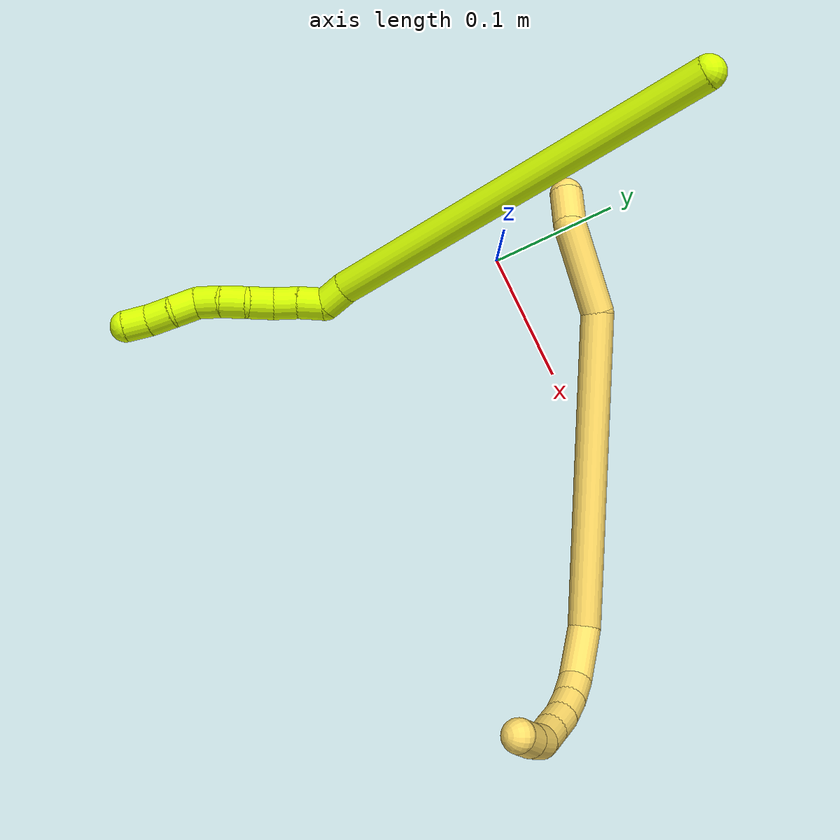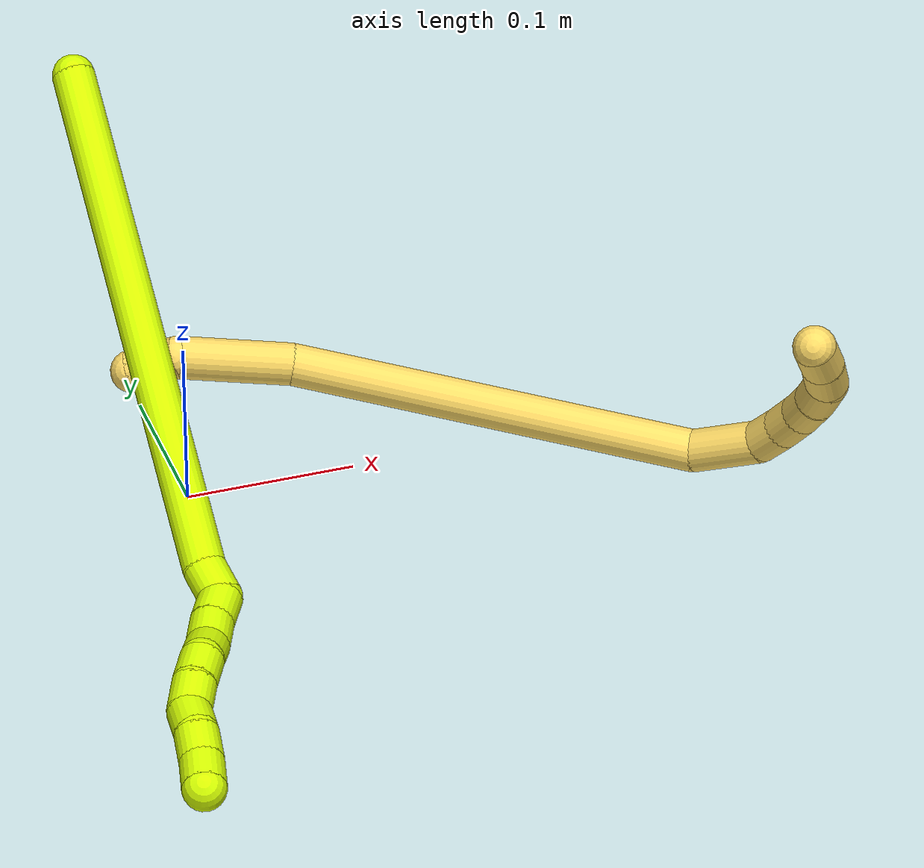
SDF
<sdf version="1.7">
 <world name="default">
  <model name="photoneo_s_sensor">
   <static>1</static>
   <pose>0 0 2 1.57079 1.57079 3.14159</pose>
   <link name="link">
    <inertial><mass>0.1</mass></inertial>
    <sensor name="sensor" type="depth">
     <update_rate>30</update_rate>
     <camera>
      <horizontal_fov>1.22</horizontal_fov>
      <image><width>1920</width><height>1200</height><format>B8G8R8</format></image>
      <clip><near>0.1</near><far>4</far></clip>
      <depth_camera><output>points</output></depth_camera>
     </camera>
     <plugin name="camera_plugin" filename="libgazebo_ros_depth_camera.so">
      <baseline>0.2</baseline>
      <alwaysOn>1</alwaysOn>
      <updateRate>0.0</updateRate>
      <cameraName>camera_ir</cameraName>
      <imageTopicName>/camera/color/image_raw</imageTopicName>
      <cameraInfoTopicName>/camera/color/camera_info</cameraInfoTopicName>
      <depthImageTopicName>/camera/depth/image_raw</depthImageTopicName>
      <depthImageCameraInfoTopicName>/camera/depth/camera_info</depthImageCameraInfoTopicName>
      <pointCloudTopicName>/camera/depth/points</pointCloudTopicName>
      <frameName>fr_optical</frameName>
      <pointCloudCutoff>0.1</pointCloudCutoff>
      <pointCloudCutoffMax>2.0</pointCloudCutoffMax>
      <distortionK1>0</distortionK1>
      <distortionK2>0</distortionK2>
      <distortionK3>0</distortionK3>
      <distortionT1>0</distortionT1>
      <distortionT2>0</distortionT2>
      <CxPrime>0</CxPrime>
      <Cx>0</Cx>
      <Cy>0</Cy>
      <focalLength>0</focalLength>
      <hackBaseline>0</hackBaseline>
     </plugin>
    </sensor>
   </link>
  </model>
  <model name="bin">
   <static>1</static>
   <link name="bottom">
    <collision name="collision-bottom">
     <pose>0 0 -0.01 0 -0 0</pose>
     <geometry><box><size>0.8 0.6 0.02</size></box></geometry>
     <surface>
      <friction><ode><mu>100</mu><mu2>100</mu2></ode></friction>
      <contact><collide_bitmask>65535</collide_bitmask></contact>
     </surface>
    </collision>
   </link>
   <link name="west_wall">
    <collision name="collision-west_wall">
     <pose>-0.41 0 0.1 0 -0 0</pose>
     <geometry><box><size>0.02 0.6 0.2</size></box></geometry>
     <surface>
      <friction><ode><mu>100</mu><mu2>100</mu2></ode></friction>
      <contact><collide_bitmask>65535</collide_bitmask></contact>
     </surface>
    </collision>
   </link>
   <link name="east_wall">
    <collision name="collision-east_wall">
     <pose>0.41 0 0.1 0 -0 0</pose>
     <geometry><box><size>0.02 0.6 0.2</size></box></geometry>
     <surface>
      <friction><ode><mu>100</mu><mu2>100</mu2></ode></friction>
      <contact><collide_bitmask>65535</collide_bitmask></contact>
     </surface>
    </collision>
   </link>
   <link name="south_wall">
    <collision name="collision-south_wall">
     <pose>0 -0.31 0.1 0 -0 0</pose>
     <geometry><box><size>0.8 0.02 0.2</size></box></geometry>
     <surface>
      <friction><ode><mu>100</mu><mu2>100</mu2></ode></friction>
      <contact><collide_bitmask>65535</collide_bitmask></contact>
     </surface>
    </collision>
   </link>
   <link name="north_wall">
    <collision name="collision-north_wall">
     <pose>0 0.31 0.1 0 -0 0</pose>
     <geometry><box><size>0.8 0.02 0.2</size></box></geometry>
     <surface>
      <friction><ode><mu>100</mu><mu2>100</mu2></ode></friction>
      <contact><collide_bitmask>65535</collide_bitmask></contact>
     </surface>
    </collision>
   </link>
  </model>
  <model name="5">
   <static>0</static>
   <link name="5">
    <collision name="collision-cylinder-e_1_1_4">
     <pose>0.013424 -0.005041 -0.002158 1.97528 1.18303 1.58891</pose>
     <geometry><cylinder><radius>0.0125</radius><length>0.029002</length></cylinder></geometry>
     <surface>
      <friction><ode><mu>1.16</mu><mu2>1.16</mu2><slip1>0</slip1><slip2>0</slip2></ode></friction>
      <contact><ode><kp>1e+06</kp><kd>1</kd><max_vel>0</max_vel><min_depth>0.001</min_depth></ode></contact>
     </surface>
    </collision>
    <visual name="visual-cylinder-e_1_1_4">
     <pose>0.013424 -0.005041 -0.002158 1.97528 1.18303 1.58891</pose>
     <geometry><cylinder><radius>0.0125</radius><length>0.029002</length></cylinder></geometry>
     <material><ambient>1 0.858824 0.4 1</ambient></material>
    </visual>
    <collision name="collision-cylinder-e_2_4_5">
     <pose>0.058417 -0.011271 0.008975 0.089269 1.17088 0.059205</pose>
     <geometry><cylinder><radius>0.0125</radius><length>0.068546</length></cylinder></geometry>
     <surface>
      <friction><ode><mu>1.16</mu><mu2>1.16</mu2><slip1>0</slip1><slip2>0</slip2></ode></friction>
      <contact><ode><kp>1e+06</kp><kd>1</kd><max_vel>0</max_vel><min_depth>0.001</min_depth></ode></contact>
     </surface>
    </collision>
    <visual name="visual-cylinder-e_2_4_5">
     <pose>0.058417 -0.011271 0.008975 0.089269 1.17088 0.059205</pose>
     <geometry><cylinder><radius>0.0125</radius><length>0.068546</length></cylinder></geometry>
     <material><ambient>1 0.858824 0.4 1</ambient></material>
    </visual>
    <collision name="collision-cylinder-e_3_5_6">
     <pose>0.207878 0.002488 0.031829 -1.00166 1.42139 -0.880612</pose>
     <geometry><cylinder><radius>0.0125</radius><length>0.238441</length></cylinder></geometry>
     <surface>
      <friction><ode><mu>1.16</mu><mu2>1.16</mu2><slip1>0</slip1><slip2>0</slip2></ode></friction>
      <contact><ode><kp>1e+06</kp><kd>1</kd><max_vel>0</max_vel><min_depth>0.001</min_depth></ode></contact>
     </surface>
    </collision>
    <visual name="visual-cylinder-e_3_5_6">
     <pose>0.207878 0.002488 0.031829 -1.00166 1.42139 -0.880612</pose>
     <geometry><cylinder><radius>0.0125</radius><length>0.238441</length></cylinder></geometry>
     <material><ambient>1 0.858824 0.4 1</ambient></material>
    </visual>
    <collision name="collision-cylinder-e_4_6_7">
     <pose>0.345221 0.013369 0.033699 2.65526 1.15013 2.4105</pose>
     <geometry><cylinder><radius>0.0125</radius><length>0.042617</length></cylinder></geometry>
     <surface>
      <friction><ode><mu>1.16</mu><mu2>1.16</mu2><slip1>0</slip1><slip2>0</slip2></ode></friction>
      <contact><ode><kp>1e+06</kp><kd>1</kd><max_vel>0</max_vel><min_depth>0.001</min_depth></ode></contact>
     </surface>
    </collision>
    <visual name="visual-cylinder-e_4_6_7">
     <pose>0.345221 0.013369 0.033699 2.65526 1.15013 2.4105</pose>
     <geometry><cylinder><radius>0.0125</radius><length>0.042617</length></cylinder></geometry>
     <material><ambient>1 0.858824 0.4 1</ambient></material>
    </visual>
    <collision name="collision-cylinder-e_5_7_8">
     <pose>0.371313 0.004878 0.019399 2.5515 0.695769 1.74652</pose>
     <geometry><cylinder><radius>0.0125</radius><length>0.02072</length></cylinder></geometry>
     <surface>
      <friction><ode><mu>1.16</mu><mu2>1.16</mu2><slip1>0</slip1><slip2>0</slip2></ode></friction>
      <contact><ode><kp>1e+06</kp><kd>1</kd><max_vel>0</max_vel><min_depth>0.001</min_depth></ode></contact>
     </surface>
    </collision>
    <visual name="visual-cylinder-e_5_7_8">
     <pose>0.371313 0.004878 0.019399 2.5515 0.695769 1.74652</pose>
     <geometry><cylinder><radius>0.0125</radius><length>0.02072</length></cylinder></geometry>
     <material><ambient>1 0.858824 0.4 1</ambient></material>
    </visual>
    <collision name="collision-cylinder-e_6_8_9">
     <pose>0.383492 -0.003782 0.00546 2.61783 0.579314 1.67669</pose>
     <geometry><cylinder><radius>0.0125</radius><length>0.020237</length></cylinder></geometry>
     <surface>
      <friction><ode><mu>1.16</mu><mu2>1.16</mu2><slip1>0</slip1><slip2>0</slip2></ode></friction>
      <contact><ode><kp>1e+06</kp><kd>1</kd><max_vel>0</max_vel><min_depth>0.001</min_depth></ode></contact>
     </surface>
    </collision>
    <visual name="visual-cylinder-e_6_8_9">
     <pose>0.383492 -0.003782 0.00546 2.61783 0.579314 1.67669</pose>
     <geometry><cylinder><radius>0.0125</radius><length>0.020237</length></cylinder></geometry>
     <material><ambient>1 0.858824 0.4 1</ambient></material>
    </visual>
    <collision name="collision-cylinder-e_7_9_10">
     <pose>0.393243 -0.011946 -0.010123 2.69718 0.431826 1.54112</pose>
     <geometry><cylinder><radius>0.0125</radius><length>0.020125</length></cylinder></geometry>
     <surface>
      <friction><ode><mu>1.16</mu><mu2>1.16</mu2><slip1>0</slip1><slip2>0</slip2></ode></friction>
      <contact><ode><kp>1e+06</kp><kd>1</kd><max_vel>0</max_vel><min_depth>0.001</min_depth></ode></contact>
     </surface>
    </collision>
    <visual name="visual-cylinder-e_7_9_10">
     <pose>0.393243 -0.011946 -0.010123 2.69718 0.431826 1.54112</pose>
     <geometry><cylinder><radius>0.0125</radius><length>0.020125</length></cylinder></geometry>
     <material><ambient>1 0.858824 0.4 1</ambient></material>
    </visual>
    <collision name="collision-cylinder-e_8_10_11">
     <pose>0.40086 -0.020702 -0.026608 2.61136 0.342697 1.13485</pose>
     <geometry><cylinder><radius>0.0125</radius><length>0.020266</length></cylinder></geometry>
     <surface>
      <friction><ode><mu>1.16</mu><mu2>1.16</mu2><slip1>0</slip1><slip2>0</slip2></ode></friction>
      <contact><ode><kp>1e+06</kp><kd>1</kd><max_vel>0</max_vel><min_depth>0.001</min_depth></ode></contact>
     </surface>
    </collision>
    <visual name="visual-cylinder-e_8_10_11">
     <pose>0.40086 -0.020702 -0.026608 2.61136 0.342697 1.13485</pose>
     <geometry><cylinder><radius>0.0125</radius><length>0.020266</length></cylinder></geometry>
     <material><ambient>1 0.858824 0.4 1</ambient></material>
    </visual>
    <collision name="collision-cylinder-e_9_11_12">
     <pose>0.403103 -0.030188 -0.043628 2.65402 -0.116294 -0.459797</pose>
     <geometry><cylinder><radius>0.0125</radius><length>0.020028</length></cylinder></geometry>
     <surface>
      <friction><ode><mu>1.16</mu><mu2>1.16</mu2><slip1>0</slip1><slip2>0</slip2></ode></friction>
      <contact><ode><kp>1e+06</kp><kd>1</kd><max_vel>0</max_vel><min_depth>0.001</min_depth></ode></contact>
     </surface>
    </collision>
    <visual name="visual-cylinder-e_9_11_12">
     <pose>0.403103 -0.030188 -0.043628 2.65402 -0.116294 -0.459797</pose>
     <geometry><cylinder><radius>0.0125</radius><length>0.020028</length></cylinder></geometry>
     <material><ambient>1 0.858824 0.4 1</ambient></material>
    </visual>
    <collision name="collision-cylinder-e_10_12_2">
     <pose>0.399789 -0.039339 -0.061098 2.66421 -0.216632 -0.840524</pose>
     <geometry><cylinder><radius>0.0125</radius><length>0.020019</length></cylinder></geometry>
     <surface>
      <friction><ode><mu>1.16</mu><mu2>1.16</mu2><slip1>0</slip1><slip2>0</slip2></ode></friction>
      <contact><ode><kp>1e+06</kp><kd>1</kd><max_vel>0</max_vel><min_depth>0.001</min_depth></ode></contact>
     </surface>
    </collision>
    <visual name="visual-cylinder-e_10_12_2">
     <pose>0.399789 -0.039339 -0.061098 2.66421 -0.216632 -0.840524</pose>
     <geometry><cylinder><radius>0.0125</radius><length>0.020019</length></cylinder></geometry>
     <material><ambient>1 0.858824 0.4 1</ambient></material>
    </visual>
    <collision name="collision-sphere-2">
     <pose>0.397638 -0.043831 -0.069781 0 -0 0</pose>
     <geometry><sphere><radius>0.0125</radius></sphere></geometry>
     <surface>
      <friction><ode><mu>1.16</mu><mu2>1.16</mu2><slip1>0</slip1><slip2>0</slip2></ode></friction>
      <contact><ode><kp>1e+06</kp><kd>1</kd><max_vel>0</max_vel><min_depth>0.001</min_depth></ode></contact>
     </surface>
    </collision>
    <visual name="visual-sphere-2">
     <pose>0.397638 -0.043831 -0.069781 0 -0 0</pose>
     <geometry><sphere><radius>0.0125</radius></sphere></geometry>
     <material><ambient>1 0.858824 0.4 1</ambient></material>
    </visual>
    <collision name="collision-sphere-12">
     <pose>0.401941 -0.034848 -0.052416 0 -0 0</pose>
     <geometry><sphere><radius>0.0125</radius></sphere></geometry>
     <surface>
      <friction><ode><mu>1.16</mu><mu2>1.16</mu2><slip1>0</slip1><slip2>0</slip2></ode></friction>
      <contact><ode><kp>1e+06</kp><kd>1</kd><max_vel>0</max_vel><min_depth>0.001</min_depth></ode></contact>
     </surface>
    </collision>
    <visual name="visual-sphere-12">
     <pose>0.401941 -0.034848 -0.052416 0 -0 0</pose>
     <geometry><sphere><radius>0.0125</radius></sphere></geometry>
     <material><ambient>1 0.858824 0.4 1</ambient></material>
    </visual>
    <collision name="collision-sphere-11">
     <pose>0.404265 -0.025528 -0.034841 0 -0 0</pose>
     <geometry><sphere><radius>0.0125</radius></sphere></geometry>
     <surface>
      <friction><ode><mu>1.16</mu><mu2>1.16</mu2><slip1>0</slip1><slip2>0</slip2></ode></friction>
      <contact><ode><kp>1e+06</kp><kd>1</kd><max_vel>0</max_vel><min_depth>0.001</min_depth></ode></contact>
     </surface>
    </collision>
    <visual name="visual-sphere-11">
     <pose>0.404265 -0.025528 -0.034841 0 -0 0</pose>
     <geometry><sphere><radius>0.0125</radius></sphere></geometry>
     <material><ambient>1 0.858824 0.4 1</ambient></material>
    </visual>
    <collision name="collision-sphere-10">
     <pose>0.397454 -0.015875 -0.018374 0 -0 0</pose>
     <geometry><sphere><radius>0.0125</radius></sphere></geometry>
     <surface>
      <friction><ode><mu>1.16</mu><mu2>1.16</mu2><slip1>0</slip1><slip2>0</slip2></ode></friction>
      <contact><ode><kp>1e+06</kp><kd>1</kd><max_vel>0</max_vel><min_depth>0.001</min_depth></ode></contact>
     </surface>
    </collision>
    <visual name="visual-sphere-10">
     <pose>0.397454 -0.015875 -0.018374 0 -0 0</pose>
     <geometry><sphere><radius>0.0125</radius></sphere></geometry>
     <material><ambient>1 0.858824 0.4 1</ambient></material>
    </visual>
    <collision name="collision-sphere-9">
     <pose>0.389032 -0.008017 -0.001872 0 -0 0</pose>
     <geometry><sphere><radius>0.0125</radius></sphere></geometry>
     <surface>
      <friction><ode><mu>1.16</mu><mu2>1.16</mu2><slip1>0</slip1><slip2>0</slip2></ode></friction>
      <contact><ode><kp>1e+06</kp><kd>1</kd><max_vel>0</max_vel><min_depth>0.001</min_depth></ode></contact>
     </surface>
    </collision>
    <visual name="visual-sphere-9">
     <pose>0.389032 -0.008017 -0.001872 0 -0 0</pose>
     <geometry><sphere><radius>0.0125</radius></sphere></geometry>
     <material><ambient>1 0.858824 0.4 1</ambient></material>
    </visual>
    <collision name="collision-sphere-4">
     <pose>0.026849 -0.010081 -0.004316 0 -0 0</pose>
     <geometry><sphere><radius>0.0125</radius></sphere></geometry>
     <surface>
      <friction><ode><mu>1.16</mu><mu2>1.16</mu2><slip1>0</slip1><slip2>0</slip2></ode></friction>
      <contact><ode><kp>1e+06</kp><kd>1</kd><max_vel>0</max_vel><min_depth>0.001</min_depth></ode></contact>
     </surface>
    </collision>
    <visual name="visual-sphere-4">
     <pose>0.026849 -0.010081 -0.004316 0 -0 0</pose>
     <geometry><sphere><radius>0.0125</radius></sphere></geometry>
     <material><ambient>1 0.858824 0.4 1</ambient></material>
    </visual>
    <collision name="collision-sphere-1">
     <geometry><sphere><radius>0.0125</radius></sphere></geometry>
     <surface>
      <friction><ode><mu>1.16</mu><mu2>1.16</mu2><slip1>0</slip1><slip2>0</slip2></ode></friction>
      <contact><ode><kp>1e+06</kp><kd>1</kd><max_vel>0</max_vel><min_depth>0.001</min_depth></ode></contact>
     </surface>
    </collision>
    <visual name="visual-sphere-1">
     <geometry><sphere><radius>0.0125</radius></sphere></geometry>
     <material><ambient>1 0.858824 0.4 1</ambient></material>
    </visual>
    <collision name="collision-sphere-8">
     <pose>0.377953 0.000453 0.012792 0 -0 0</pose>
     <geometry><sphere><radius>0.0125</radius></sphere></geometry>
     <surface>
      <friction><ode><mu>1.16</mu><mu2>1.16</mu2><slip1>0</slip1><slip2>0</slip2></ode></friction>
      <contact><ode><kp>1e+06</kp><kd>1</kd><max_vel>0</max_vel><min_depth>0.001</min_depth></ode></contact>
     </surface>
    </collision>
    <visual name="visual-sphere-8">
     <pose>0.377953 0.000453 0.012792 0 -0 0</pose>
     <geometry><sphere><radius>0.0125</radius></sphere></geometry>
     <material><ambient>1 0.858824 0.4 1</ambient></material>
    </visual>
    <collision name="collision-sphere-5">
     <pose>0.089986 -0.012461 0.022266 0 -0 0</pose>
     <geometry><sphere><radius>0.0125</radius></sphere></geometry>
     <surface>
      <friction><ode><mu>1.16</mu><mu2>1.16</mu2><slip1>0</slip1><slip2>0</slip2></ode></friction>
      <contact><ode><kp>1e+06</kp><kd>1</kd><max_vel>0</max_vel><min_depth>0.001</min_depth></ode></contact>
     </surface>
    </collision>
    <visual name="visual-sphere-5">
     <pose>0.089986 -0.012461 0.022266 0 -0 0</pose>
     <geometry><sphere><radius>0.0125</radius></sphere></geometry>
     <material><ambient>1 0.858824 0.4 1</ambient></material>
    </visual>
    <collision name="collision-sphere-6">
     <pose>0.32577 0.017437 0.041392 0 -0 0</pose>
     <geometry><sphere><radius>0.0125</radius></sphere></geometry>
     <surface>
      <friction><ode><mu>1.16</mu><mu2>1.16</mu2><slip1>0</slip1><slip2>0</slip2></ode></friction>
      <contact><ode><kp>1e+06</kp><kd>1</kd><max_vel>0</max_vel><min_depth>0.001</min_depth></ode></contact>
     </surface>
    </collision>
    <visual name="visual-sphere-6">
     <pose>0.32577 0.017437 0.041392 0 -0 0</pose>
     <geometry><sphere><radius>0.0125</radius></sphere></geometry>
     <material><ambient>1 0.858824 0.4 1</ambient></material>
    </visual>
    <collision name="collision-sphere-7">
     <pose>0.364672 0.009302 0.026007 0 -0 0</pose>
     <geometry><sphere><radius>0.0125</radius></sphere></geometry>
     <surface>
      <friction><ode><mu>1.16</mu><mu2>1.16</mu2><slip1>0</slip1><slip2>0</slip2></ode></friction>
      <contact><ode><kp>1e+06</kp><kd>1</kd><max_vel>0</max_vel><min_depth>0.001</min_depth></ode></contact>
     </surface>
    </collision>
    <visual name="visual-sphere-7">
     <pose>0.364672 0.009302 0.026007 0 -0 0</pose>
     <geometry><sphere><radius>0.0125</radius></sphere></geometry>
     <material><ambient>1 0.858824 0.4 1</ambient></material>
    </visual>
    <inertial>
     <pose>0.232482 -0.003567 0.014501 0 -0 0</pose>
     <mass>0.5</mass>
     <inertia>
      <ixx>2.7e-05</ixx>
      <ixy>0</ixy>
      <ixz>0</ixz>
      <iyy>0.001035</iyy>
      <iyz>0</iyz>
      <izz>-0.001307</izz>
     </inertia>
    </inertial>
   </link>
   <pose>-0.014454 0.062161 0.051077 -2.18233 0.001922 -0.473288</pose>
  </model>
  <model name="15">
   <static>0</static>
   <link name="15">
    <collision name="collision-cylinder-e_1_1_4">
     <pose>0.006624 -0.158674 0.007495 1.5236 0.041675 0.039753</pose>
     <geometry><cylinder><radius>0.0125</radius><length>0.317978</length></cylinder></geometry>
     <surface>
      <friction><ode><mu>1.16</mu><mu2>1.16</mu2><slip1>0</slip1><slip2>0</slip2></ode></friction>
      <contact><ode><kp>1e+06</kp><kd>1</kd><max_vel>0</max_vel><min_depth>0.001</min_depth></ode></contact>
     </surface>
    </collision>
    <visual name="visual-cylinder-e_1_1_4">
     <pose>0.006624 -0.158674 0.007495 1.5236 0.041675 0.039753</pose>
     <geometry><cylinder><radius>0.0125</radius><length>0.317978</length></cylinder></geometry>
     <material><ambient>0.835294 1 0 1</ambient></material>
    </visual>
    <collision name="collision-cylinder-e_2_4_5">
     <pose>0.015871 -0.327402 0.016644 1.40778 0.251987 0.214242</pose>
     <geometry><cylinder><radius>0.0125</radius><length>0.021042</length></cylinder></geometry>
     <surface>
      <friction><ode><mu>1.16</mu><mu2>1.16</mu2><slip1>0</slip1><slip2>0</slip2></ode></friction>
      <contact><ode><kp>1e+06</kp><kd>1</kd><max_vel>0</max_vel><min_depth>0.001</min_depth></ode></contact>
     </surface>
    </collision>
    <visual name="visual-cylinder-e_2_4_5">
     <pose>0.015871 -0.327402 0.016644 1.40778 0.251987 0.214242</pose>
     <geometry><cylinder><radius>0.0125</radius><length>0.021042</length></cylinder></geometry>
     <material><ambient>0.835294 1 0 1</ambient></material>
    </visual>
    <collision name="collision-cylinder-e_3_5_6">
     <pose>0.014449 -0.345706 0.022989 1.05367 -0.402902 -0.236471</pose>
     <geometry><cylinder><radius>0.0125</radius><length>0.020634</length></cylinder></geometry>
     <surface>
      <friction><ode><mu>1.16</mu><mu2>1.16</mu2><slip1>0</slip1><slip2>0</slip2></ode></friction>
      <contact><ode><kp>1e+06</kp><kd>1</kd><max_vel>0</max_vel><min_depth>0.001</min_depth></ode></contact>
     </surface>
    </collision>
    <visual name="visual-cylinder-e_3_5_6">
     <pose>0.014449 -0.345706 0.022989 1.05367 -0.402902 -0.236471</pose>
     <geometry><cylinder><radius>0.0125</radius><length>0.020634</length></cylinder></geometry>
     <material><ambient>0.835294 1 0 1</ambient></material>
    </visual>
    <collision name="collision-cylinder-e_4_6_7">
     <pose>0.007513 -0.362261 0.032585 1.03748 -0.291236 -0.167059</pose>
     <geometry><cylinder><radius>0.0125</radius><length>0.020138</length></cylinder></geometry>
     <surface>
      <friction><ode><mu>1.16</mu><mu2>1.16</mu2><slip1>0</slip1><slip2>0</slip2></ode></friction>
      <contact><ode><kp>1e+06</kp><kd>1</kd><max_vel>0</max_vel><min_depth>0.001</min_depth></ode></contact>
     </surface>
    </collision>
    <visual name="visual-cylinder-e_4_6_7">
     <pose>0.007513 -0.362261 0.032585 1.03748 -0.291236 -0.167059</pose>
     <geometry><cylinder><radius>0.0125</radius><length>0.020138</length></cylinder></geometry>
     <material><ambient>0.835294 1 0 1</ambient></material>
    </visual>
    <collision name="collision-cylinder-e_5_7_8">
     <pose>0.002051 -0.376509 0.045245 0.653778 -0.25724 -0.087646</pose>
     <geometry><cylinder><radius>0.0125</radius><length>0.020208</length></cylinder></geometry>
     <surface>
      <friction><ode><mu>1.16</mu><mu2>1.16</mu2><slip1>0</slip1><slip2>0</slip2></ode></friction>
      <contact><ode><kp>1e+06</kp><kd>1</kd><max_vel>0</max_vel><min_depth>0.001</min_depth></ode></contact>
     </surface>
    </collision>
    <visual name="visual-cylinder-e_5_7_8">
     <pose>0.002051 -0.376509 0.045245 0.653778 -0.25724 -0.087646</pose>
     <geometry><cylinder><radius>0.0125</radius><length>0.020208</length></cylinder></geometry>
     <material><ambient>0.835294 1 0 1</ambient></material>
    </visual>
    <collision name="collision-cylinder-e_6_8_9">
     <pose>-0.004118 -0.390436 0.057828 1.027 -0.368107 -0.209208</pose>
     <geometry><cylinder><radius>0.0125</radius><length>0.02</length></cylinder></geometry>
     <surface>
      <friction><ode><mu>1.16</mu><mu2>1.16</mu2><slip1>0</slip1><slip2>0</slip2></ode></friction>
      <contact><ode><kp>1e+06</kp><kd>1</kd><max_vel>0</max_vel><min_depth>0.001</min_depth></ode></contact>
     </surface>
    </collision>
    <visual name="visual-cylinder-e_6_8_9">
     <pose>-0.004118 -0.390436 0.057828 1.027 -0.368107 -0.209208</pose>
     <geometry><cylinder><radius>0.0125</radius><length>0.02</length></cylinder></geometry>
     <material><ambient>0.835294 1 0 1</ambient></material>
    </visual>
    <collision name="collision-cylinder-e_7_9_10">
     <pose>-0.010947 -0.407251 0.06606 1.20288 -0.328941 -0.226817</pose>
     <geometry><cylinder><radius>0.0125</radius><length>0.02</length></cylinder></geometry>
     <surface>
      <friction><ode><mu>1.16</mu><mu2>1.16</mu2><slip1>0</slip1><slip2>0</slip2></ode></friction>
      <contact><ode><kp>1e+06</kp><kd>1</kd><max_vel>0</max_vel><min_depth>0.001</min_depth></ode></contact>
     </surface>
    </collision>
    <visual name="visual-cylinder-e_7_9_10">
     <pose>-0.010947 -0.407251 0.06606 1.20288 -0.328941 -0.226817</pose>
     <geometry><cylinder><radius>0.0125</radius><length>0.02</length></cylinder></geometry>
     <material><ambient>0.835294 1 0 1</ambient></material>
    </visual>
    <collision name="collision-cylinder-e_8_10_11">
     <pose>-0.013702 -0.424355 0.07506 0.976089 0.047527 0.025235</pose>
     <geometry><cylinder><radius>0.0125</radius><length>0.02</length></cylinder></geometry>
     <surface>
      <friction><ode><mu>1.16</mu><mu2>1.16</mu2><slip1>0</slip1><slip2>0</slip2></ode></friction>
      <contact><ode><kp>1e+06</kp><kd>1</kd><max_vel>0</max_vel><min_depth>0.001</min_depth></ode></contact>
     </surface>
    </collision>
    <visual name="visual-cylinder-e_8_10_11">
     <pose>-0.013702 -0.424355 0.07506 0.976089 0.047527 0.025235</pose>
     <geometry><cylinder><radius>0.0125</radius><length>0.02</length></cylinder></geometry>
     <material><ambient>0.835294 1 0 1</ambient></material>
    </visual>
    <collision name="collision-cylinder-e_9_11_12">
     <pose>-0.01358 -0.442003 0.08412 1.21681 -0.035313 -0.024599</pose>
     <geometry><cylinder><radius>0.0125</radius><length>0.02</length></cylinder></geometry>
     <surface>
      <friction><ode><mu>1.16</mu><mu2>1.16</mu2><slip1>0</slip1><slip2>0</slip2></ode></friction>
      <contact><ode><kp>1e+06</kp><kd>1</kd><max_vel>0</max_vel><min_depth>0.001</min_depth></ode></contact>
     </surface>
    </collision>
    <visual name="visual-cylinder-e_9_11_12">
     <pose>-0.01358 -0.442003 0.08412 1.21681 -0.035313 -0.024599</pose>
     <geometry><cylinder><radius>0.0125</radius><length>0.02</length></cylinder></geometry>
     <material><ambient>0.835294 1 0 1</ambient></material>
    </visual>
    <collision name="collision-cylinder-e_10_12_2">
     <pose>-0.014939 -0.460217 0.09215 1.09404 -0.1008 -0.061421</pose>
     <geometry><cylinder><radius>0.0125</radius><length>0.02</length></cylinder></geometry>
     <surface>
      <friction><ode><mu>1.16</mu><mu2>1.16</mu2><slip1>0</slip1><slip2>0</slip2></ode></friction>
      <contact><ode><kp>1e+06</kp><kd>1</kd><max_vel>0</max_vel><min_depth>0.001</min_depth></ode></contact>
     </surface>
    </collision>
    <visual name="visual-cylinder-e_10_12_2">
     <pose>-0.014939 -0.460217 0.09215 1.09404 -0.1008 -0.061421</pose>
     <geometry><cylinder><radius>0.0125</radius><length>0.02</length></cylinder></geometry>
     <material><ambient>0.835294 1 0 1</ambient></material>
    </visual>
    <collision name="collision-sphere-2">
     <pose>-0.015946 -0.469057 0.096716 0 -0 0</pose>
     <geometry><sphere><radius>0.0125</radius></sphere></geometry>
     <surface>
      <friction><ode><mu>1.16</mu><mu2>1.16</mu2><slip1>0</slip1><slip2>0</slip2></ode></friction>
      <contact><ode><kp>1e+06</kp><kd>1</kd><max_vel>0</max_vel><min_depth>0.001</min_depth></ode></contact>
     </surface>
    </collision>
    <visual name="visual-sphere-2">
     <pose>-0.015946 -0.469057 0.096716 0 -0 0</pose>
     <geometry><sphere><radius>0.0125</radius></sphere></geometry>
     <material><ambient>0.835294 1 0 1</ambient></material>
    </visual>
    <collision name="collision-sphere-12">
     <pose>-0.013933 -0.451378 0.087585 0 -0 0</pose>
     <geometry><sphere><radius>0.0125</radius></sphere></geometry>
     <surface>
      <friction><ode><mu>1.16</mu><mu2>1.16</mu2><slip1>0</slip1><slip2>0</slip2></ode></friction>
      <contact><ode><kp>1e+06</kp><kd>1</kd><max_vel>0</max_vel><min_depth>0.001</min_depth></ode></contact>
     </surface>
    </collision>
    <visual name="visual-sphere-12">
     <pose>-0.013933 -0.451378 0.087585 0 -0 0</pose>
     <geometry><sphere><radius>0.0125</radius></sphere></geometry>
     <material><ambient>0.835294 1 0 1</ambient></material>
    </visual>
    <collision name="collision-sphere-11">
     <pose>-0.013227 -0.432629 0.080656 0 -0 0</pose>
     <geometry><sphere><radius>0.0125</radius></sphere></geometry>
     <surface>
      <friction><ode><mu>1.16</mu><mu2>1.16</mu2><slip1>0</slip1><slip2>0</slip2></ode></friction>
      <contact><ode><kp>1e+06</kp><kd>1</kd><max_vel>0</max_vel><min_depth>0.001</min_depth></ode></contact>
     </surface>
    </collision>
    <visual name="visual-sphere-11">
     <pose>-0.013227 -0.432629 0.080656 0 -0 0</pose>
     <geometry><sphere><radius>0.0125</radius></sphere></geometry>
     <material><ambient>0.835294 1 0 1</ambient></material>
    </visual>
    <collision name="collision-sphere-10">
     <pose>-0.014177 -0.416082 0.069463 0 -0 0</pose>
     <geometry><sphere><radius>0.0125</radius></sphere></geometry>
     <surface>
      <friction><ode><mu>1.16</mu><mu2>1.16</mu2><slip1>0</slip1><slip2>0</slip2></ode></friction>
      <contact><ode><kp>1e+06</kp><kd>1</kd><max_vel>0</max_vel><min_depth>0.001</min_depth></ode></contact>
     </surface>
    </collision>
    <visual name="visual-sphere-10">
     <pose>-0.014177 -0.416082 0.069463 0 -0 0</pose>
     <geometry><sphere><radius>0.0125</radius></sphere></geometry>
     <material><ambient>0.835294 1 0 1</ambient></material>
    </visual>
    <collision name="collision-sphere-9">
     <pose>-0.007716 -0.398421 0.062656 0 -0 0</pose>
     <geometry><sphere><radius>0.0125</radius></sphere></geometry>
     <surface>
      <friction><ode><mu>1.16</mu><mu2>1.16</mu2><slip1>0</slip1><slip2>0</slip2></ode></friction>
      <contact><ode><kp>1e+06</kp><kd>1</kd><max_vel>0</max_vel><min_depth>0.001</min_depth></ode></contact>
     </surface>
    </collision>
    <visual name="visual-sphere-9">
     <pose>-0.007716 -0.398421 0.062656 0 -0 0</pose>
     <geometry><sphere><radius>0.0125</radius></sphere></geometry>
     <material><ambient>0.835294 1 0 1</ambient></material>
    </visual>
    <collision name="collision-sphere-4">
     <pose>0.013248 -0.317348 0.01499 0 -0 0</pose>
     <geometry><sphere><radius>0.0125</radius></sphere></geometry>
     <surface>
      <friction><ode><mu>1.16</mu><mu2>1.16</mu2><slip1>0</slip1><slip2>0</slip2></ode></friction>
      <contact><ode><kp>1e+06</kp><kd>1</kd><max_vel>0</max_vel><min_depth>0.001</min_depth></ode></contact>
     </surface>
    </collision>
    <visual name="visual-sphere-4">
     <pose>0.013248 -0.317348 0.01499 0 -0 0</pose>
     <geometry><sphere><radius>0.0125</radius></sphere></geometry>
     <material><ambient>0.835294 1 0 1</ambient></material>
    </visual>
    <collision name="collision-sphere-1">
     <geometry><sphere><radius>0.0125</radius></sphere></geometry>
     <surface>
      <friction><ode><mu>1.16</mu><mu2>1.16</mu2><slip1>0</slip1><slip2>0</slip2></ode></friction>
      <contact><ode><kp>1e+06</kp><kd>1</kd><max_vel>0</max_vel><min_depth>0.001</min_depth></ode></contact>
     </surface>
    </collision>
    <visual name="visual-sphere-1">
     <geometry><sphere><radius>0.0125</radius></sphere></geometry>
     <material><ambient>0.835294 1 0 1</ambient></material>
    </visual>
    <collision name="collision-sphere-8">
     <pose>-0.000519 -0.382452 0.053001 0 -0 0</pose>
     <geometry><sphere><radius>0.0125</radius></sphere></geometry>
     <surface>
      <friction><ode><mu>1.16</mu><mu2>1.16</mu2><slip1>0</slip1><slip2>0</slip2></ode></friction>
      <contact><ode><kp>1e+06</kp><kd>1</kd><max_vel>0</max_vel><min_depth>0.001</min_depth></ode></contact>
     </surface>
    </collision>
    <visual name="visual-sphere-8">
     <pose>-0.000519 -0.382452 0.053001 0 -0 0</pose>
     <geometry><sphere><radius>0.0125</radius></sphere></geometry>
     <material><ambient>0.835294 1 0 1</ambient></material>
    </visual>
    <collision name="collision-sphere-5">
     <pose>0.018494 -0.337456 0.018297 0 -0 0</pose>
     <geometry><sphere><radius>0.0125</radius></sphere></geometry>
     <surface>
      <friction><ode><mu>1.16</mu><mu2>1.16</mu2><slip1>0</slip1><slip2>0</slip2></ode></friction>
      <contact><ode><kp>1e+06</kp><kd>1</kd><max_vel>0</max_vel><min_depth>0.001</min_depth></ode></contact>
     </surface>
    </collision>
    <visual name="visual-sphere-5">
     <pose>0.018494 -0.337456 0.018297 0 -0 0</pose>
     <geometry><sphere><radius>0.0125</radius></sphere></geometry>
     <material><ambient>0.835294 1 0 1</ambient></material>
    </visual>
    <collision name="collision-sphere-6">
     <pose>0.010404 -0.353956 0.027682 0 -0 0</pose>
     <geometry><sphere><radius>0.0125</radius></sphere></geometry>
     <surface>
      <friction><ode><mu>1.16</mu><mu2>1.16</mu2><slip1>0</slip1><slip2>0</slip2></ode></friction>
      <contact><ode><kp>1e+06</kp><kd>1</kd><max_vel>0</max_vel><min_depth>0.001</min_depth></ode></contact>
     </surface>
    </collision>
    <visual name="visual-sphere-6">
     <pose>0.010404 -0.353956 0.027682 0 -0 0</pose>
     <geometry><sphere><radius>0.0125</radius></sphere></geometry>
     <material><ambient>0.835294 1 0 1</ambient></material>
    </visual>
    <collision name="collision-sphere-7">
     <pose>0.004622 -0.370566 0.037488 0 -0 0</pose>
     <geometry><sphere><radius>0.0125</radius></sphere></geometry>
     <surface>
      <friction><ode><mu>1.16</mu><mu2>1.16</mu2><slip1>0</slip1><slip2>0</slip2></ode></friction>
      <contact><ode><kp>1e+06</kp><kd>1</kd><max_vel>0</max_vel><min_depth>0.001</min_depth></ode></contact>
     </surface>
    </collision>
    <visual name="visual-sphere-7">
     <pose>0.004622 -0.370566 0.037488 0 -0 0</pose>
     <geometry><sphere><radius>0.0125</radius></sphere></geometry>
     <material><ambient>0.835294 1 0 1</ambient></material>
    </visual>
    <inertial>
     <pose>0.003571 -0.243733 0.024565 0 -0 0</pose>
     <mass>0.5</mass>
     <inertia>
      <ixx>0.002804</ixx>
      <ixy>0</ixy>
      <ixz>0</ixz>
      <iyy>0.000207</iyy>
      <iyz>0</iyz>
      <izz>0.002595</izz>
     </inertia>
    </inertial>
   </link>
   <pose>-0.018736 0.152716 0.199706 0.603825 -0.104464 -0.133841</pose>
  </model>
 </world>
</sdf>
